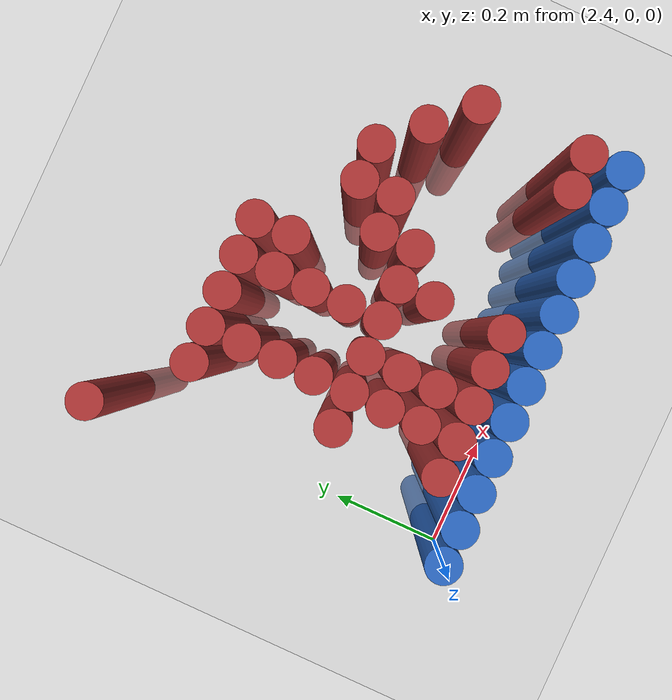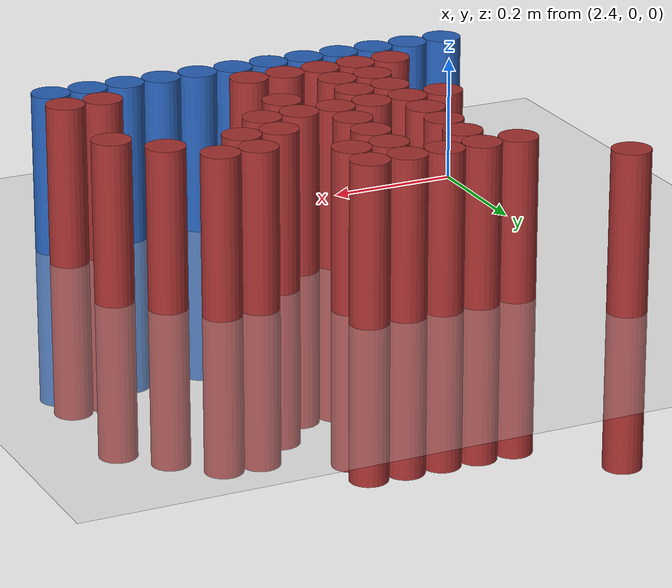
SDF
<sdf version="1.6">
 <world name="default">
  <model name="ground_plane">
   <static>1</static>
   <link name="link">
    <collision name="collision">
     <geometry><plane><normal>0 0 1</normal><size>100 100</size></plane></geometry>
     <surface><friction><ode><mu>100</mu><mu2>50</mu2></ode></friction></surface>
    </collision>
    <visual name="visual">
     <cast_shadows>0</cast_shadows>
     <geometry><plane><normal>0 0 1</normal><size>100 100</size></plane></geometry>
     <material>
      <script><uri>file://media/materials/scripts/gazebo.material</uri><name>Gazebo/Grey</name></script>
     </material>
    </visual>
   </link>
  </model>
  <model name="unit_cylinder_225">
   <static>1</static>
   <pose>2.430000 0.630000 0.000000 0.000000 0.000000 0.000000</pose>
   <link name="link">
    <inertial>
     <mass>1</mass>
     <inertia><ixx>0.145833</ixx><ixy>0</ixy><ixz>0</ixz><iyy>0.145833</iyy><iyz>0</iyz><izz>0.125</izz></inertia>
    </inertial>
    <collision name="collision">
     <geometry><cylinder><radius>0.030000</radius><length>0.5</length></cylinder></geometry>
    </collision>
    <visual name="visual">
     <geometry><cylinder><radius>0.030000</radius><length>0.5</length></cylinder></geometry>
     <material>
      <ambient>0.648000 0.192000 0.192000 1</ambient>
      <diffuse>0.648000 0.192000 0.192000 1</diffuse>
     </material>
     <material>
      <script><name>Gazebo/Grey</name><uri>file://media/materials/scripts/gazebo.material</uri></script>
     </material>
    </visual>
   </link>
  </model>
  <model name="unit_cylinder_230">
   <static>1</static>
   <pose>2.550000 0.510000 0.000000 0.000000 0.000000 0.000000</pose>
   <link name="link">
    <inertial>
     <mass>1</mass>
     <inertia><ixx>0.145833</ixx><ixy>0</ixy><ixz>0</ixz><iyy>0.145833</iyy><iyz>0</iyz><izz>0.125</izz></inertia>
    </inertial>
    <collision name="collision">
     <geometry><cylinder><radius>0.030000</radius><length>0.5</length></cylinder></geometry>
    </collision>
    <visual name="visual">
     <geometry><cylinder><radius>0.030000</radius><length>0.5</length></cylinder></geometry>
     <material>
      <ambient>0.648000 0.192000 0.192000 1</ambient>
      <diffuse>0.648000 0.192000 0.192000 1</diffuse>
     </material>
     <material>
      <script><name>Gazebo/Grey</name><uri>file://media/materials/scripts/gazebo.material</uri></script>
     </material>
    </visual>
   </link>
  </model>
  <model name="unit_cylinder_231">
   <static>1</static>
   <pose>2.610000 0.510000 0.000000 0.000000 0.000000 0.000000</pose>
   <link name="link">
    <inertial>
     <mass>1</mass>
     <inertia><ixx>0.145833</ixx><ixy>0</ixy><ixz>0</ixz><iyy>0.145833</iyy><iyz>0</iyz><izz>0.125</izz></inertia>
    </inertial>
    <collision name="collision">
     <geometry><cylinder><radius>0.030000</radius><length>0.5</length></cylinder></geometry>
    </collision>
    <visual name="visual">
     <geometry><cylinder><radius>0.030000</radius><length>0.5</length></cylinder></geometry>
     <material>
      <ambient>0.648000 0.192000 0.192000 1</ambient>
      <diffuse>0.648000 0.192000 0.192000 1</diffuse>
     </material>
     <material>
      <script><name>Gazebo/Grey</name><uri>file://media/materials/scripts/gazebo.material</uri></script>
     </material>
    </visual>
   </link>
  </model>
  <model name="unit_cylinder_232">
   <static>1</static>
   <pose>2.670000 0.510000 0.000000 0.000000 0.000000 0.000000</pose>
   <link name="link">
    <inertial>
     <mass>1</mass>
     <inertia><ixx>0.145833</ixx><ixy>0</ixy><ixz>0</ixz><iyy>0.145833</iyy><iyz>0</iyz><izz>0.125</izz></inertia>
    </inertial>
    <collision name="collision">
     <geometry><cylinder><radius>0.030000</radius><length>0.5</length></cylinder></geometry>
    </collision>
    <visual name="visual">
     <geometry><cylinder><radius>0.030000</radius><length>0.5</length></cylinder></geometry>
     <material>
      <ambient>0.648000 0.192000 0.192000 1</ambient>
      <diffuse>0.648000 0.192000 0.192000 1</diffuse>
     </material>
     <material>
      <script><name>Gazebo/Grey</name><uri>file://media/materials/scripts/gazebo.material</uri></script>
     </material>
    </visual>
   </link>
  </model>
  <model name="unit_cylinder_233">
   <static>1</static>
   <pose>2.730000 0.510000 0.000000 0.000000 0.000000 0.000000</pose>
   <link name="link">
    <inertial>
     <mass>1</mass>
     <inertia><ixx>0.145833</ixx><ixy>0</ixy><ixz>0</ixz><iyy>0.145833</iyy><iyz>0</iyz><izz>0.125</izz></inertia>
    </inertial>
    <collision name="collision">
     <geometry><cylinder><radius>0.030000</radius><length>0.5</length></cylinder></geometry>
    </collision>
    <visual name="visual">
     <geometry><cylinder><radius>0.030000</radius><length>0.5</length></cylinder></geometry>
     <material>
      <ambient>0.648000 0.192000 0.192000 1</ambient>
      <diffuse>0.648000 0.192000 0.192000 1</diffuse>
     </material>
     <material>
      <script><name>Gazebo/Grey</name><uri>file://media/materials/scripts/gazebo.material</uri></script>
     </material>
    </visual>
   </link>
  </model>
  <model name="unit_cylinder_234">
   <static>1</static>
   <pose>2.790000 0.510000 0.000000 0.000000 0.000000 0.000000</pose>
   <link name="link">
    <inertial>
     <mass>1</mass>
     <inertia><ixx>0.145833</ixx><ixy>0</ixy><ixz>0</ixz><iyy>0.145833</iyy><iyz>0</iyz><izz>0.125</izz></inertia>
    </inertial>
    <collision name="collision">
     <geometry><cylinder><radius>0.030000</radius><length>0.5</length></cylinder></geometry>
    </collision>
    <visual name="visual">
     <geometry><cylinder><radius>0.030000</radius><length>0.5</length></cylinder></geometry>
     <material>
      <ambient>0.648000 0.192000 0.192000 1</ambient>
      <diffuse>0.648000 0.192000 0.192000 1</diffuse>
     </material>
     <material>
      <script><name>Gazebo/Grey</name><uri>file://media/materials/scripts/gazebo.material</uri></script>
     </material>
    </visual>
   </link>
  </model>
  <model name="unit_cylinder_238">
   <static>1</static>
   <pose>2.610000 0.450000 0.000000 0.000000 0.000000 0.000000</pose>
   <link name="link">
    <inertial>
     <mass>1</mass>
     <inertia><ixx>0.145833</ixx><ixy>0</ixy><ixz>0</ixz><iyy>0.145833</iyy><iyz>0</iyz><izz>0.125</izz></inertia>
    </inertial>
    <collision name="collision">
     <geometry><cylinder><radius>0.030000</radius><length>0.5</length></cylinder></geometry>
    </collision>
    <visual name="visual">
     <geometry><cylinder><radius>0.030000</radius><length>0.5</length></cylinder></geometry>
     <material>
      <ambient>0.648000 0.192000 0.192000 1</ambient>
      <diffuse>0.648000 0.192000 0.192000 1</diffuse>
     </material>
     <material>
      <script><name>Gazebo/Grey</name><uri>file://media/materials/scripts/gazebo.material</uri></script>
     </material>
    </visual>
   </link>
  </model>
  <model name="unit_cylinder_239">
   <static>1</static>
   <pose>2.730000 0.450000 0.000000 0.000000 0.000000 0.000000</pose>
   <link name="link">
    <inertial>
     <mass>1</mass>
     <inertia><ixx>0.145833</ixx><ixy>0</ixy><ixz>0</ixz><iyy>0.145833</iyy><iyz>0</iyz><izz>0.125</izz></inertia>
    </inertial>
    <collision name="collision">
     <geometry><cylinder><radius>0.030000</radius><length>0.5</length></cylinder></geometry>
    </collision>
    <visual name="visual">
     <geometry><cylinder><radius>0.030000</radius><length>0.5</length></cylinder></geometry>
     <material>
      <ambient>0.648000 0.192000 0.192000 1</ambient>
      <diffuse>0.648000 0.192000 0.192000 1</diffuse>
     </material>
     <material>
      <script><name>Gazebo/Grey</name><uri>file://media/materials/scripts/gazebo.material</uri></script>
     </material>
    </visual>
   </link>
  </model>
  <model name="unit_cylinder_240">
   <static>1</static>
   <pose>2.790000 0.450000 0.000000 0.000000 0.000000 0.000000</pose>
   <link name="link">
    <inertial>
     <mass>1</mass>
     <inertia><ixx>0.145833</ixx><ixy>0</ixy><ixz>0</ixz><iyy>0.145833</iyy><iyz>0</iyz><izz>0.125</izz></inertia>
    </inertial>
    <collision name="collision">
     <geometry><cylinder><radius>0.030000</radius><length>0.5</length></cylinder></geometry>
    </collision>
    <visual name="visual">
     <geometry><cylinder><radius>0.030000</radius><length>0.5</length></cylinder></geometry>
     <material>
      <ambient>0.648000 0.192000 0.192000 1</ambient>
      <diffuse>0.648000 0.192000 0.192000 1</diffuse>
     </material>
     <material>
      <script><name>Gazebo/Grey</name><uri>file://media/materials/scripts/gazebo.material</uri></script>
     </material>
    </visual>
   </link>
  </model>
  <model name="unit_cylinder_247">
   <static>1</static>
   <pose>2.610000 0.390000 0.000000 0.000000 0.000000 0.000000</pose>
   <link name="link">
    <inertial>
     <mass>1</mass>
     <inertia><ixx>0.145833</ixx><ixy>0</ixy><ixz>0</ixz><iyy>0.145833</iyy><iyz>0</iyz><izz>0.125</izz></inertia>
    </inertial>
    <collision name="collision">
     <geometry><cylinder><radius>0.030000</radius><length>0.5</length></cylinder></geometry>
    </collision>
    <visual name="visual">
     <geometry><cylinder><radius>0.030000</radius><length>0.5</length></cylinder></geometry>
     <material>
      <ambient>0.648000 0.192000 0.192000 1</ambient>
      <diffuse>0.648000 0.192000 0.192000 1</diffuse>
     </material>
     <material>
      <script><name>Gazebo/Grey</name><uri>file://media/materials/scripts/gazebo.material</uri></script>
     </material>
    </visual>
   </link>
  </model>
  <model name="unit_cylinder_248">
   <static>1</static>
   <pose>2.730000 0.390000 0.000000 0.000000 0.000000 0.000000</pose>
   <link name="link">
    <inertial>
     <mass>1</mass>
     <inertia><ixx>0.145833</ixx><ixy>0</ixy><ixz>0</ixz><iyy>0.145833</iyy><iyz>0</iyz><izz>0.125</izz></inertia>
    </inertial>
    <collision name="collision">
     <geometry><cylinder><radius>0.030000</radius><length>0.5</length></cylinder></geometry>
    </collision>
    <visual name="visual">
     <geometry><cylinder><radius>0.030000</radius><length>0.5</length></cylinder></geometry>
     <material>
      <ambient>0.648000 0.192000 0.192000 1</ambient>
      <diffuse>0.648000 0.192000 0.192000 1</diffuse>
     </material>
     <material>
      <script><name>Gazebo/Grey</name><uri>file://media/materials/scripts/gazebo.material</uri></script>
     </material>
    </visual>
   </link>
  </model>
  <model name="unit_cylinder_249">
   <static>1</static>
   <pose>2.910000 0.390000 0.000000 0.000000 0.000000 0.000000</pose>
   <link name="link">
    <inertial>
     <mass>1</mass>
     <inertia><ixx>0.145833</ixx><ixy>0</ixy><ixz>0</ixz><iyy>0.145833</iyy><iyz>0</iyz><izz>0.125</izz></inertia>
    </inertial>
    <collision name="collision">
     <geometry><cylinder><radius>0.030000</radius><length>0.5</length></cylinder></geometry>
    </collision>
    <visual name="visual">
     <geometry><cylinder><radius>0.030000</radius><length>0.5</length></cylinder></geometry>
     <material>
      <ambient>0.648000 0.192000 0.192000 1</ambient>
      <diffuse>0.648000 0.192000 0.192000 1</diffuse>
     </material>
     <material>
      <script><name>Gazebo/Grey</name><uri>file://media/materials/scripts/gazebo.material</uri></script>
     </material>
    </visual>
   </link>
  </model>
  <model name="unit_cylinder_250">
   <static>1</static>
   <pose>2.970000 0.390000 0.000000 0.000000 0.000000 0.000000</pose>
   <link name="link">
    <inertial>
     <mass>1</mass>
     <inertia><ixx>0.145833</ixx><ixy>0</ixy><ixz>0</ixz><iyy>0.145833</iyy><iyz>0</iyz><izz>0.125</izz></inertia>
    </inertial>
    <collision name="collision">
     <geometry><cylinder><radius>0.030000</radius><length>0.5</length></cylinder></geometry>
    </collision>
    <visual name="visual">
     <geometry><cylinder><radius>0.030000</radius><length>0.5</length></cylinder></geometry>
     <material>
      <ambient>0.648000 0.192000 0.192000 1</ambient>
      <diffuse>0.648000 0.192000 0.192000 1</diffuse>
     </material>
     <material>
      <script><name>Gazebo/Grey</name><uri>file://media/materials/scripts/gazebo.material</uri></script>
     </material>
    </visual>
   </link>
  </model>
  <model name="unit_cylinder_256">
   <static>1</static>
   <pose>2.610000 0.330000 0.000000 0.000000 0.000000 0.000000</pose>
   <link name="link">
    <inertial>
     <mass>1</mass>
     <inertia><ixx>0.145833</ixx><ixy>0</ixy><ixz>0</ixz><iyy>0.145833</iyy><iyz>0</iyz><izz>0.125</izz></inertia>
    </inertial>
    <collision name="collision">
     <geometry><cylinder><radius>0.030000</radius><length>0.5</length></cylinder></geometry>
    </collision>
    <visual name="visual">
     <geometry><cylinder><radius>0.030000</radius><length>0.5</length></cylinder></geometry>
     <material>
      <ambient>0.648000 0.192000 0.192000 1</ambient>
      <diffuse>0.648000 0.192000 0.192000 1</diffuse>
     </material>
     <material>
      <script><name>Gazebo/Grey</name><uri>file://media/materials/scripts/gazebo.material</uri></script>
     </material>
    </visual>
   </link>
  </model>
  <model name="unit_cylinder_257">
   <static>1</static>
   <pose>2.730000 0.330000 0.000000 0.000000 0.000000 0.000000</pose>
   <link name="link">
    <inertial>
     <mass>1</mass>
     <inertia><ixx>0.145833</ixx><ixy>0</ixy><ixz>0</ixz><iyy>0.145833</iyy><iyz>0</iyz><izz>0.125</izz></inertia>
    </inertial>
    <collision name="collision">
     <geometry><cylinder><radius>0.030000</radius><length>0.5</length></cylinder></geometry>
    </collision>
    <visual name="visual">
     <geometry><cylinder><radius>0.030000</radius><length>0.5</length></cylinder></geometry>
     <material>
      <ambient>0.648000 0.192000 0.192000 1</ambient>
      <diffuse>0.648000 0.192000 0.192000 1</diffuse>
     </material>
     <material>
      <script><name>Gazebo/Grey</name><uri>file://media/materials/scripts/gazebo.material</uri></script>
     </material>
    </visual>
   </link>
  </model>
  <model name="unit_cylinder_258">
   <static>1</static>
   <pose>2.850000 0.330000 0.000000 0.000000 0.000000 0.000000</pose>
   <link name="link">
    <inertial>
     <mass>1</mass>
     <inertia><ixx>0.145833</ixx><ixy>0</ixy><ixz>0</ixz><iyy>0.145833</iyy><iyz>0</iyz><izz>0.125</izz></inertia>
    </inertial>
    <collision name="collision">
     <geometry><cylinder><radius>0.030000</radius><length>0.5</length></cylinder></geometry>
    </collision>
    <visual name="visual">
     <geometry><cylinder><radius>0.030000</radius><length>0.5</length></cylinder></geometry>
     <material>
      <ambient>0.648000 0.192000 0.192000 1</ambient>
      <diffuse>0.648000 0.192000 0.192000 1</diffuse>
     </material>
     <material>
      <script><name>Gazebo/Grey</name><uri>file://media/materials/scripts/gazebo.material</uri></script>
     </material>
    </visual>
   </link>
  </model>
  <model name="unit_cylinder_259">
   <static>1</static>
   <pose>2.910000 0.330000 0.000000 0.000000 0.000000 0.000000</pose>
   <link name="link">
    <inertial>
     <mass>1</mass>
     <inertia><ixx>0.145833</ixx><ixy>0</ixy><ixz>0</ixz><iyy>0.145833</iyy><iyz>0</iyz><izz>0.125</izz></inertia>
    </inertial>
    <collision name="collision">
     <geometry><cylinder><radius>0.030000</radius><length>0.5</length></cylinder></geometry>
    </collision>
    <visual name="visual">
     <geometry><cylinder><radius>0.030000</radius><length>0.5</length></cylinder></geometry>
     <material>
      <ambient>0.648000 0.192000 0.192000 1</ambient>
      <diffuse>0.648000 0.192000 0.192000 1</diffuse>
     </material>
     <material>
      <script><name>Gazebo/Grey</name><uri>file://media/materials/scripts/gazebo.material</uri></script>
     </material>
    </visual>
   </link>
  </model>
  <model name="unit_cylinder_260">
   <static>1</static>
   <pose>3.030000 0.330000 0.000000 0.000000 0.000000 0.000000</pose>
   <link name="link">
    <inertial>
     <mass>1</mass>
     <inertia><ixx>0.145833</ixx><ixy>0</ixy><ixz>0</ixz><iyy>0.145833</iyy><iyz>0</iyz><izz>0.125</izz></inertia>
    </inertial>
    <collision name="collision">
     <geometry><cylinder><radius>0.030000</radius><length>0.5</length></cylinder></geometry>
    </collision>
    <visual name="visual">
     <geometry><cylinder><radius>0.030000</radius><length>0.5</length></cylinder></geometry>
     <material>
      <ambient>0.648000 0.192000 0.192000 1</ambient>
      <diffuse>0.648000 0.192000 0.192000 1</diffuse>
     </material>
     <material>
      <script><name>Gazebo/Grey</name><uri>file://media/materials/scripts/gazebo.material</uri></script>
     </material>
    </visual>
   </link>
  </model>
  <model name="unit_cylinder_268">
   <static>1</static>
   <pose>2.550000 0.270000 0.000000 0.000000 0.000000 0.000000</pose>
   <link name="link">
    <inertial>
     <mass>1</mass>
     <inertia><ixx>0.145833</ixx><ixy>0</ixy><ixz>0</ixz><iyy>0.145833</iyy><iyz>0</iyz><izz>0.125</izz></inertia>
    </inertial>
    <collision name="collision">
     <geometry><cylinder><radius>0.030000</radius><length>0.5</length></cylinder></geometry>
    </collision>
    <visual name="visual">
     <geometry><cylinder><radius>0.030000</radius><length>0.5</length></cylinder></geometry>
     <material>
      <ambient>0.648000 0.192000 0.192000 1</ambient>
      <diffuse>0.648000 0.192000 0.192000 1</diffuse>
     </material>
     <material>
      <script><name>Gazebo/Grey</name><uri>file://media/materials/scripts/gazebo.material</uri></script>
     </material>
    </visual>
   </link>
  </model>
  <model name="unit_cylinder_269">
   <static>1</static>
   <pose>2.610000 0.270000 0.000000 0.000000 0.000000 0.000000</pose>
   <link name="link">
    <inertial>
     <mass>1</mass>
     <inertia><ixx>0.145833</ixx><ixy>0</ixy><ixz>0</ixz><iyy>0.145833</iyy><iyz>0</iyz><izz>0.125</izz></inertia>
    </inertial>
    <collision name="collision">
     <geometry><cylinder><radius>0.030000</radius><length>0.5</length></cylinder></geometry>
    </collision>
    <visual name="visual">
     <geometry><cylinder><radius>0.030000</radius><length>0.5</length></cylinder></geometry>
     <material>
      <ambient>0.648000 0.192000 0.192000 1</ambient>
      <diffuse>0.648000 0.192000 0.192000 1</diffuse>
     </material>
     <material>
      <script><name>Gazebo/Grey</name><uri>file://media/materials/scripts/gazebo.material</uri></script>
     </material>
    </visual>
   </link>
  </model>
  <model name="unit_cylinder_270">
   <static>1</static>
   <pose>2.670000 0.270000 0.000000 0.000000 0.000000 0.000000</pose>
   <link name="link">
    <inertial>
     <mass>1</mass>
     <inertia><ixx>0.145833</ixx><ixy>0</ixy><ixz>0</ixz><iyy>0.145833</iyy><iyz>0</iyz><izz>0.125</izz></inertia>
    </inertial>
    <collision name="collision">
     <geometry><cylinder><radius>0.030000</radius><length>0.5</length></cylinder></geometry>
    </collision>
    <visual name="visual">
     <geometry><cylinder><radius>0.030000</radius><length>0.5</length></cylinder></geometry>
     <material>
      <ambient>0.648000 0.192000 0.192000 1</ambient>
      <diffuse>0.648000 0.192000 0.192000 1</diffuse>
     </material>
     <material>
      <script><name>Gazebo/Grey</name><uri>file://media/materials/scripts/gazebo.material</uri></script>
     </material>
    </visual>
   </link>
  </model>
  <model name="unit_cylinder_271">
   <static>1</static>
   <pose>2.730000 0.270000 0.000000 0.000000 0.000000 0.000000</pose>
   <link name="link">
    <inertial>
     <mass>1</mass>
     <inertia><ixx>0.145833</ixx><ixy>0</ixy><ixz>0</ixz><iyy>0.145833</iyy><iyz>0</iyz><izz>0.125</izz></inertia>
    </inertial>
    <collision name="collision">
     <geometry><cylinder><radius>0.030000</radius><length>0.5</length></cylinder></geometry>
    </collision>
    <visual name="visual">
     <geometry><cylinder><radius>0.030000</radius><length>0.5</length></cylinder></geometry>
     <material>
      <ambient>0.648000 0.192000 0.192000 1</ambient>
      <diffuse>0.648000 0.192000 0.192000 1</diffuse>
     </material>
     <material>
      <script><name>Gazebo/Grey</name><uri>file://media/materials/scripts/gazebo.material</uri></script>
     </material>
    </visual>
   </link>
  </model>
  <model name="unit_cylinder_272">
   <static>1</static>
   <pose>2.790000 0.270000 0.000000 0.000000 0.000000 0.000000</pose>
   <link name="link">
    <inertial>
     <mass>1</mass>
     <inertia><ixx>0.145833</ixx><ixy>0</ixy><ixz>0</ixz><iyy>0.145833</iyy><iyz>0</iyz><izz>0.125</izz></inertia>
    </inertial>
    <collision name="collision">
     <geometry><cylinder><radius>0.030000</radius><length>0.5</length></cylinder></geometry>
    </collision>
    <visual name="visual">
     <geometry><cylinder><radius>0.030000</radius><length>0.5</length></cylinder></geometry>
     <material>
      <ambient>0.648000 0.192000 0.192000 1</ambient>
      <diffuse>0.648000 0.192000 0.192000 1</diffuse>
     </material>
     <material>
      <script><name>Gazebo/Grey</name><uri>file://media/materials/scripts/gazebo.material</uri></script>
     </material>
    </visual>
   </link>
  </model>
  <model name="unit_cylinder_273">
   <static>1</static>
   <pose>2.850000 0.270000 0.000000 0.000000 0.000000 0.000000</pose>
   <link name="link">
    <inertial>
     <mass>1</mass>
     <inertia><ixx>0.145833</ixx><ixy>0</ixy><ixz>0</ixz><iyy>0.145833</iyy><iyz>0</iyz><izz>0.125</izz></inertia>
    </inertial>
    <collision name="collision">
     <geometry><cylinder><radius>0.030000</radius><length>0.5</length></cylinder></geometry>
    </collision>
    <visual name="visual">
     <geometry><cylinder><radius>0.030000</radius><length>0.5</length></cylinder></geometry>
     <material>
      <ambient>0.648000 0.192000 0.192000 1</ambient>
      <diffuse>0.648000 0.192000 0.192000 1</diffuse>
     </material>
     <material>
      <script><name>Gazebo/Grey</name><uri>file://media/materials/scripts/gazebo.material</uri></script>
     </material>
    </visual>
   </link>
  </model>
  <model name="unit_cylinder_274">
   <static>1</static>
   <pose>3.090000 0.270000 0.000000 0.000000 0.000000 0.000000</pose>
   <link name="link">
    <inertial>
     <mass>1</mass>
     <inertia><ixx>0.145833</ixx><ixy>0</ixy><ixz>0</ixz><iyy>0.145833</iyy><iyz>0</iyz><izz>0.125</izz></inertia>
    </inertial>
    <collision name="collision">
     <geometry><cylinder><radius>0.030000</radius><length>0.5</length></cylinder></geometry>
    </collision>
    <visual name="visual">
     <geometry><cylinder><radius>0.030000</radius><length>0.5</length></cylinder></geometry>
     <material>
      <ambient>0.648000 0.192000 0.192000 1</ambient>
      <diffuse>0.648000 0.192000 0.192000 1</diffuse>
     </material>
     <material>
      <script><name>Gazebo/Grey</name><uri>file://media/materials/scripts/gazebo.material</uri></script>
     </material>
    </visual>
   </link>
  </model>
  <model name="unit_cylinder_279">
   <static>1</static>
   <pose>2.610000 0.210000 0.000000 0.000000 0.000000 0.000000</pose>
   <link name="link">
    <inertial>
     <mass>1</mass>
     <inertia><ixx>0.145833</ixx><ixy>0</ixy><ixz>0</ixz><iyy>0.145833</iyy><iyz>0</iyz><izz>0.125</izz></inertia>
    </inertial>
    <collision name="collision">
     <geometry><cylinder><radius>0.030000</radius><length>0.5</length></cylinder></geometry>
    </collision>
    <visual name="visual">
     <geometry><cylinder><radius>0.030000</radius><length>0.5</length></cylinder></geometry>
     <material>
      <ambient>0.648000 0.192000 0.192000 1</ambient>
      <diffuse>0.648000 0.192000 0.192000 1</diffuse>
     </material>
     <material>
      <script><name>Gazebo/Grey</name><uri>file://media/materials/scripts/gazebo.material</uri></script>
     </material>
    </visual>
   </link>
  </model>
  <model name="unit_cylinder_280">
   <static>1</static>
   <pose>2.670000 0.210000 0.000000 0.000000 0.000000 0.000000</pose>
   <link name="link">
    <inertial>
     <mass>1</mass>
     <inertia><ixx>0.145833</ixx><ixy>0</ixy><ixz>0</ixz><iyy>0.145833</iyy><iyz>0</iyz><izz>0.125</izz></inertia>
    </inertial>
    <collision name="collision">
     <geometry><cylinder><radius>0.030000</radius><length>0.5</length></cylinder></geometry>
    </collision>
    <visual name="visual">
     <geometry><cylinder><radius>0.030000</radius><length>0.5</length></cylinder></geometry>
     <material>
      <ambient>0.648000 0.192000 0.192000 1</ambient>
      <diffuse>0.648000 0.192000 0.192000 1</diffuse>
     </material>
     <material>
      <script><name>Gazebo/Grey</name><uri>file://media/materials/scripts/gazebo.material</uri></script>
     </material>
    </visual>
   </link>
  </model>
  <model name="unit_cylinder_281">
   <static>1</static>
   <pose>2.790000 0.210000 0.000000 0.000000 0.000000 0.000000</pose>
   <link name="link">
    <inertial>
     <mass>1</mass>
     <inertia><ixx>0.145833</ixx><ixy>0</ixy><ixz>0</ixz><iyy>0.145833</iyy><iyz>0</iyz><izz>0.125</izz></inertia>
    </inertial>
    <collision name="collision">
     <geometry><cylinder><radius>0.030000</radius><length>0.5</length></cylinder></geometry>
    </collision>
    <visual name="visual">
     <geometry><cylinder><radius>0.030000</radius><length>0.5</length></cylinder></geometry>
     <material>
      <ambient>0.648000 0.192000 0.192000 1</ambient>
      <diffuse>0.648000 0.192000 0.192000 1</diffuse>
     </material>
     <material>
      <script><name>Gazebo/Grey</name><uri>file://media/materials/scripts/gazebo.material</uri></script>
     </material>
    </visual>
   </link>
  </model>
  <model name="unit_cylinder_289">
   <static>1</static>
   <pose>2.610000 0.150000 0.000000 0.000000 0.000000 0.000000</pose>
   <link name="link">
    <inertial>
     <mass>1</mass>
     <inertia><ixx>0.145833</ixx><ixy>0</ixy><ixz>0</ixz><iyy>0.145833</iyy><iyz>0</iyz><izz>0.125</izz></inertia>
    </inertial>
    <collision name="collision">
     <geometry><cylinder><radius>0.030000</radius><length>0.5</length></cylinder></geometry>
    </collision>
    <visual name="visual">
     <geometry><cylinder><radius>0.030000</radius><length>0.5</length></cylinder></geometry>
     <material>
      <ambient>0.648000 0.192000 0.192000 1</ambient>
      <diffuse>0.648000 0.192000 0.192000 1</diffuse>
     </material>
     <material>
      <script><name>Gazebo/Grey</name><uri>file://media/materials/scripts/gazebo.material</uri></script>
     </material>
    </visual>
   </link>
  </model>
  <model name="unit_cylinder_290">
   <static>1</static>
   <pose>2.670000 0.150000 0.000000 0.000000 0.000000 0.000000</pose>
   <link name="link">
    <inertial>
     <mass>1</mass>
     <inertia><ixx>0.145833</ixx><ixy>0</ixy><ixz>0</ixz><iyy>0.145833</iyy><iyz>0</iyz><izz>0.125</izz></inertia>
    </inertial>
    <collision name="collision">
     <geometry><cylinder><radius>0.030000</radius><length>0.5</length></cylinder></geometry>
    </collision>
    <visual name="visual">
     <geometry><cylinder><radius>0.030000</radius><length>0.5</length></cylinder></geometry>
     <material>
      <ambient>0.648000 0.192000 0.192000 1</ambient>
      <diffuse>0.648000 0.192000 0.192000 1</diffuse>
     </material>
     <material>
      <script><name>Gazebo/Grey</name><uri>file://media/materials/scripts/gazebo.material</uri></script>
     </material>
    </visual>
   </link>
  </model>
  <model name="unit_cylinder_304">
   <static>1</static>
   <pose>2.550000 0.090000 0.000000 0.000000 0.000000 0.000000</pose>
   <link name="link">
    <inertial>
     <mass>1</mass>
     <inertia><ixx>0.145833</ixx><ixy>0</ixy><ixz>0</ixz><iyy>0.145833</iyy><iyz>0</iyz><izz>0.125</izz></inertia>
    </inertial>
    <collision name="collision">
     <geometry><cylinder><radius>0.030000</radius><length>0.5</length></cylinder></geometry>
    </collision>
    <visual name="visual">
     <geometry><cylinder><radius>0.030000</radius><length>0.5</length></cylinder></geometry>
     <material>
      <ambient>0.648000 0.192000 0.192000 1</ambient>
      <diffuse>0.648000 0.192000 0.192000 1</diffuse>
     </material>
     <material>
      <script><name>Gazebo/Grey</name><uri>file://media/materials/scripts/gazebo.material</uri></script>
     </material>
    </visual>
   </link>
  </model>
  <model name="unit_cylinder_305">
   <static>1</static>
   <pose>2.610000 0.090000 0.000000 0.000000 0.000000 0.000000</pose>
   <link name="link">
    <inertial>
     <mass>1</mass>
     <inertia><ixx>0.145833</ixx><ixy>0</ixy><ixz>0</ixz><iyy>0.145833</iyy><iyz>0</iyz><izz>0.125</izz></inertia>
    </inertial>
    <collision name="collision">
     <geometry><cylinder><radius>0.030000</radius><length>0.5</length></cylinder></geometry>
    </collision>
    <visual name="visual">
     <geometry><cylinder><radius>0.030000</radius><length>0.5</length></cylinder></geometry>
     <material>
      <ambient>0.648000 0.192000 0.192000 1</ambient>
      <diffuse>0.648000 0.192000 0.192000 1</diffuse>
     </material>
     <material>
      <script><name>Gazebo/Grey</name><uri>file://media/materials/scripts/gazebo.material</uri></script>
     </material>
    </visual>
   </link>
  </model>
  <model name="unit_cylinder_306">
   <static>1</static>
   <pose>2.670000 0.090000 0.000000 0.000000 0.000000 0.000000</pose>
   <link name="link">
    <inertial>
     <mass>1</mass>
     <inertia><ixx>0.145833</ixx><ixy>0</ixy><ixz>0</ixz><iyy>0.145833</iyy><iyz>0</iyz><izz>0.125</izz></inertia>
    </inertial>
    <collision name="collision">
     <geometry><cylinder><radius>0.030000</radius><length>0.5</length></cylinder></geometry>
    </collision>
    <visual name="visual">
     <geometry><cylinder><radius>0.030000</radius><length>0.5</length></cylinder></geometry>
     <material>
      <ambient>0.648000 0.192000 0.192000 1</ambient>
      <diffuse>0.648000 0.192000 0.192000 1</diffuse>
     </material>
     <material>
      <script><name>Gazebo/Grey</name><uri>file://media/materials/scripts/gazebo.material</uri></script>
     </material>
    </visual>
   </link>
  </model>
  <model name="unit_cylinder_307">
   <static>1</static>
   <pose>2.730000 0.090000 0.000000 0.000000 0.000000 0.000000</pose>
   <link name="link">
    <inertial>
     <mass>1</mass>
     <inertia><ixx>0.145833</ixx><ixy>0</ixy><ixz>0</ixz><iyy>0.145833</iyy><iyz>0</iyz><izz>0.125</izz></inertia>
    </inertial>
    <collision name="collision">
     <geometry><cylinder><radius>0.030000</radius><length>0.5</length></cylinder></geometry>
    </collision>
    <visual name="visual">
     <geometry><cylinder><radius>0.030000</radius><length>0.5</length></cylinder></geometry>
     <material>
      <ambient>0.648000 0.192000 0.192000 1</ambient>
      <diffuse>0.648000 0.192000 0.192000 1</diffuse>
     </material>
     <material>
      <script><name>Gazebo/Grey</name><uri>file://media/materials/scripts/gazebo.material</uri></script>
     </material>
    </visual>
   </link>
  </model>
  <model name="unit_cylinder_308">
   <static>1</static>
   <pose>2.790000 0.090000 0.000000 0.000000 0.000000 0.000000</pose>
   <link name="link">
    <inertial>
     <mass>1</mass>
     <inertia><ixx>0.145833</ixx><ixy>0</ixy><ixz>0</ixz><iyy>0.145833</iyy><iyz>0</iyz><izz>0.125</izz></inertia>
    </inertial>
    <collision name="collision">
     <geometry><cylinder><radius>0.030000</radius><length>0.5</length></cylinder></geometry>
    </collision>
    <visual name="visual">
     <geometry><cylinder><radius>0.030000</radius><length>0.5</length></cylinder></geometry>
     <material>
      <ambient>0.648000 0.192000 0.192000 1</ambient>
      <diffuse>0.648000 0.192000 0.192000 1</diffuse>
     </material>
     <material>
      <script><name>Gazebo/Grey</name><uri>file://media/materials/scripts/gazebo.material</uri></script>
     </material>
    </visual>
   </link>
  </model>
  <model name="unit_cylinder_309">
   <static>1</static>
   <pose>3.030000 0.090000 0.000000 0.000000 0.000000 0.000000</pose>
   <link name="link">
    <inertial>
     <mass>1</mass>
     <inertia><ixx>0.145833</ixx><ixy>0</ixy><ixz>0</ixz><iyy>0.145833</iyy><iyz>0</iyz><izz>0.125</izz></inertia>
    </inertial>
    <collision name="collision">
     <geometry><cylinder><radius>0.030000</radius><length>0.5</length></cylinder></geometry>
    </collision>
    <visual name="visual">
     <geometry><cylinder><radius>0.030000</radius><length>0.5</length></cylinder></geometry>
     <material>
      <ambient>0.648000 0.192000 0.192000 1</ambient>
      <diffuse>0.648000 0.192000 0.192000 1</diffuse>
     </material>
     <material>
      <script><name>Gazebo/Grey</name><uri>file://media/materials/scripts/gazebo.material</uri></script>
     </material>
    </visual>
   </link>
  </model>
  <model name="unit_cylinder_310">
   <static>1</static>
   <pose>3.090000 0.090000 0.000000 0.000000 0.000000 0.000000</pose>
   <link name="link">
    <inertial>
     <mass>1</mass>
     <inertia><ixx>0.145833</ixx><ixy>0</ixy><ixz>0</ixz><iyy>0.145833</iyy><iyz>0</iyz><izz>0.125</izz></inertia>
    </inertial>
    <collision name="collision">
     <geometry><cylinder><radius>0.030000</radius><length>0.5</length></cylinder></geometry>
    </collision>
    <visual name="visual">
     <geometry><cylinder><radius>0.030000</radius><length>0.5</length></cylinder></geometry>
     <material>
      <ambient>0.648000 0.192000 0.192000 1</ambient>
      <diffuse>0.648000 0.192000 0.192000 1</diffuse>
     </material>
     <material>
      <script><name>Gazebo/Grey</name><uri>file://media/materials/scripts/gazebo.material</uri></script>
     </material>
    </visual>
   </link>
  </model>
  <model name="unit_cylinder_321">
   <static>1</static>
   <pose>2.430000 0.030000 0.000000 0.000000 0.000000 0.000000</pose>
   <link name="link">
    <inertial>
     <mass>1</mass>
     <inertia><ixx>0.145833</ixx><ixy>0</ixy><ixz>0</ixz><iyy>0.145833</iyy><iyz>0</iyz><izz>0.125</izz></inertia>
    </inertial>
    <collision name="collision">
     <geometry><cylinder><radius>0.030000</radius><length>0.5</length></cylinder></geometry>
    </collision>
    <visual name="visual">
     <geometry><cylinder><radius>0.030000</radius><length>0.5</length></cylinder></geometry>
     <material>
      <ambient>0.152000 0.379000 0.720000 1</ambient>
      <diffuse>0.152000 0.379000 0.720000 1</diffuse>
     </material>
     <material>
      <script><name>Gazebo/Grey</name><uri>file://media/materials/scripts/gazebo.material</uri></script>
     </material>
    </visual>
   </link>
  </model>
  <model name="unit_cylinder_322">
   <static>1</static>
   <pose>2.490000 0.030000 0.000000 0.000000 0.000000 0.000000</pose>
   <link name="link">
    <inertial>
     <mass>1</mass>
     <inertia><ixx>0.145833</ixx><ixy>0</ixy><ixz>0</ixz><iyy>0.145833</iyy><iyz>0</iyz><izz>0.125</izz></inertia>
    </inertial>
    <collision name="collision">
     <geometry><cylinder><radius>0.030000</radius><length>0.5</length></cylinder></geometry>
    </collision>
    <visual name="visual">
     <geometry><cylinder><radius>0.030000</radius><length>0.5</length></cylinder></geometry>
     <material>
      <ambient>0.152000 0.379000 0.720000 1</ambient>
      <diffuse>0.152000 0.379000 0.720000 1</diffuse>
     </material>
     <material>
      <script><name>Gazebo/Grey</name><uri>file://media/materials/scripts/gazebo.material</uri></script>
     </material>
    </visual>
   </link>
  </model>
  <model name="unit_cylinder_323">
   <static>1</static>
   <pose>2.550000 0.030000 0.000000 0.000000 0.000000 0.000000</pose>
   <link name="link">
    <inertial>
     <mass>1</mass>
     <inertia><ixx>0.145833</ixx><ixy>0</ixy><ixz>0</ixz><iyy>0.145833</iyy><iyz>0</iyz><izz>0.125</izz></inertia>
    </inertial>
    <collision name="collision">
     <geometry><cylinder><radius>0.030000</radius><length>0.5</length></cylinder></geometry>
    </collision>
    <visual name="visual">
     <geometry><cylinder><radius>0.030000</radius><length>0.5</length></cylinder></geometry>
     <material>
      <ambient>0.152000 0.379000 0.720000 1</ambient>
      <diffuse>0.152000 0.379000 0.720000 1</diffuse>
     </material>
     <material>
      <script><name>Gazebo/Grey</name><uri>file://media/materials/scripts/gazebo.material</uri></script>
     </material>
    </visual>
   </link>
  </model>
  <model name="unit_cylinder_324">
   <static>1</static>
   <pose>2.610000 0.030000 0.000000 0.000000 0.000000 0.000000</pose>
   <link name="link">
    <inertial>
     <mass>1</mass>
     <inertia><ixx>0.145833</ixx><ixy>0</ixy><ixz>0</ixz><iyy>0.145833</iyy><iyz>0</iyz><izz>0.125</izz></inertia>
    </inertial>
    <collision name="collision">
     <geometry><cylinder><radius>0.030000</radius><length>0.5</length></cylinder></geometry>
    </collision>
    <visual name="visual">
     <geometry><cylinder><radius>0.030000</radius><length>0.5</length></cylinder></geometry>
     <material>
      <ambient>0.152000 0.379000 0.720000 1</ambient>
      <diffuse>0.152000 0.379000 0.720000 1</diffuse>
     </material>
     <material>
      <script><name>Gazebo/Grey</name><uri>file://media/materials/scripts/gazebo.material</uri></script>
     </material>
    </visual>
   </link>
  </model>
  <model name="unit_cylinder_325">
   <static>1</static>
   <pose>2.670000 0.030000 0.000000 0.000000 0.000000 0.000000</pose>
   <link name="link">
    <inertial>
     <mass>1</mass>
     <inertia><ixx>0.145833</ixx><ixy>0</ixy><ixz>0</ixz><iyy>0.145833</iyy><iyz>0</iyz><izz>0.125</izz></inertia>
    </inertial>
    <collision name="collision">
     <geometry><cylinder><radius>0.030000</radius><length>0.5</length></cylinder></geometry>
    </collision>
    <visual name="visual">
     <geometry><cylinder><radius>0.030000</radius><length>0.5</length></cylinder></geometry>
     <material>
      <ambient>0.152000 0.379000 0.720000 1</ambient>
      <diffuse>0.152000 0.379000 0.720000 1</diffuse>
     </material>
     <material>
      <script><name>Gazebo/Grey</name><uri>file://media/materials/scripts/gazebo.material</uri></script>
     </material>
    </visual>
   </link>
  </model>
  <model name="unit_cylinder_326">
   <static>1</static>
   <pose>2.730000 0.030000 0.000000 0.000000 0.000000 0.000000</pose>
   <link name="link">
    <inertial>
     <mass>1</mass>
     <inertia><ixx>0.145833</ixx><ixy>0</ixy><ixz>0</ixz><iyy>0.145833</iyy><iyz>0</iyz><izz>0.125</izz></inertia>
    </inertial>
    <collision name="collision">
     <geometry><cylinder><radius>0.030000</radius><length>0.5</length></cylinder></geometry>
    </collision>
    <visual name="visual">
     <geometry><cylinder><radius>0.030000</radius><length>0.5</length></cylinder></geometry>
     <material>
      <ambient>0.152000 0.379000 0.720000 1</ambient>
      <diffuse>0.152000 0.379000 0.720000 1</diffuse>
     </material>
     <material>
      <script><name>Gazebo/Grey</name><uri>file://media/materials/scripts/gazebo.material</uri></script>
     </material>
    </visual>
   </link>
  </model>
  <model name="unit_cylinder_327">
   <static>1</static>
   <pose>2.790000 0.030000 0.000000 0.000000 0.000000 0.000000</pose>
   <link name="link">
    <inertial>
     <mass>1</mass>
     <inertia><ixx>0.145833</ixx><ixy>0</ixy><ixz>0</ixz><iyy>0.145833</iyy><iyz>0</iyz><izz>0.125</izz></inertia>
    </inertial>
    <collision name="collision">
     <geometry><cylinder><radius>0.030000</radius><length>0.5</length></cylinder></geometry>
    </collision>
    <visual name="visual">
     <geometry><cylinder><radius>0.030000</radius><length>0.5</length></cylinder></geometry>
     <material>
      <ambient>0.152000 0.379000 0.720000 1</ambient>
      <diffuse>0.152000 0.379000 0.720000 1</diffuse>
     </material>
     <material>
      <script><name>Gazebo/Grey</name><uri>file://media/materials/scripts/gazebo.material</uri></script>
     </material>
    </visual>
   </link>
  </model>
  <model name="unit_cylinder_328">
   <static>1</static>
   <pose>2.850000 0.030000 0.000000 0.000000 0.000000 0.000000</pose>
   <link name="link">
    <inertial>
     <mass>1</mass>
     <inertia><ixx>0.145833</ixx><ixy>0</ixy><ixz>0</ixz><iyy>0.145833</iyy><iyz>0</iyz><izz>0.125</izz></inertia>
    </inertial>
    <collision name="collision">
     <geometry><cylinder><radius>0.030000</radius><length>0.5</length></cylinder></geometry>
    </collision>
    <visual name="visual">
     <geometry><cylinder><radius>0.030000</radius><length>0.5</length></cylinder></geometry>
     <material>
      <ambient>0.152000 0.379000 0.720000 1</ambient>
      <diffuse>0.152000 0.379000 0.720000 1</diffuse>
     </material>
     <material>
      <script><name>Gazebo/Grey</name><uri>file://media/materials/scripts/gazebo.material</uri></script>
     </material>
    </visual>
   </link>
  </model>
  <model name="unit_cylinder_329">
   <static>1</static>
   <pose>2.910000 0.030000 0.000000 0.000000 0.000000 0.000000</pose>
   <link name="link">
    <inertial>
     <mass>1</mass>
     <inertia><ixx>0.145833</ixx><ixy>0</ixy><ixz>0</ixz><iyy>0.145833</iyy><iyz>0</iyz><izz>0.125</izz></inertia>
    </inertial>
    <collision name="collision">
     <geometry><cylinder><radius>0.030000</radius><length>0.5</length></cylinder></geometry>
    </collision>
    <visual name="visual">
     <geometry><cylinder><radius>0.030000</radius><length>0.5</length></cylinder></geometry>
     <material>
      <ambient>0.152000 0.379000 0.720000 1</ambient>
      <diffuse>0.152000 0.379000 0.720000 1</diffuse>
     </material>
     <material>
      <script><name>Gazebo/Grey</name><uri>file://media/materials/scripts/gazebo.material</uri></script>
     </material>
    </visual>
   </link>
  </model>
  <model name="unit_cylinder_330">
   <static>1</static>
   <pose>2.970000 0.030000 0.000000 0.000000 0.000000 0.000000</pose>
   <link name="link">
    <inertial>
     <mass>1</mass>
     <inertia><ixx>0.145833</ixx><ixy>0</ixy><ixz>0</ixz><iyy>0.145833</iyy><iyz>0</iyz><izz>0.125</izz></inertia>
    </inertial>
    <collision name="collision">
     <geometry><cylinder><radius>0.030000</radius><length>0.5</length></cylinder></geometry>
    </collision>
    <visual name="visual">
     <geometry><cylinder><radius>0.030000</radius><length>0.5</length></cylinder></geometry>
     <material>
      <ambient>0.152000 0.379000 0.720000 1</ambient>
      <diffuse>0.152000 0.379000 0.720000 1</diffuse>
     </material>
     <material>
      <script><name>Gazebo/Grey</name><uri>file://media/materials/scripts/gazebo.material</uri></script>
     </material>
    </visual>
   </link>
  </model>
  <model name="unit_cylinder_331">
   <static>1</static>
   <pose>3.030000 0.030000 0.000000 0.000000 0.000000 0.000000</pose>
   <link name="link">
    <inertial>
     <mass>1</mass>
     <inertia><ixx>0.145833</ixx><ixy>0</ixy><ixz>0</ixz><iyy>0.145833</iyy><iyz>0</iyz><izz>0.125</izz></inertia>
    </inertial>
    <collision name="collision">
     <geometry><cylinder><radius>0.030000</radius><length>0.5</length></cylinder></geometry>
    </collision>
    <visual name="visual">
     <geometry><cylinder><radius>0.030000</radius><length>0.5</length></cylinder></geometry>
     <material>
      <ambient>0.152000 0.379000 0.720000 1</ambient>
      <diffuse>0.152000 0.379000 0.720000 1</diffuse>
     </material>
     <material>
      <script><name>Gazebo/Grey</name><uri>file://media/materials/scripts/gazebo.material</uri></script>
     </material>
    </visual>
   </link>
  </model>
  <model name="unit_cylinder_332">
   <static>1</static>
   <pose>3.090000 0.030000 0.000000 0.000000 0.000000 0.000000</pose>
   <link name="link">
    <inertial>
     <mass>1</mass>
     <inertia><ixx>0.145833</ixx><ixy>0</ixy><ixz>0</ixz><iyy>0.145833</iyy><iyz>0</iyz><izz>0.125</izz></inertia>
    </inertial>
    <collision name="collision">
     <geometry><cylinder><radius>0.030000</radius><length>0.5</length></cylinder></geometry>
    </collision>
    <visual name="visual">
     <geometry><cylinder><radius>0.030000</radius><length>0.5</length></cylinder></geometry>
     <material>
      <ambient>0.152000 0.379000 0.720000 1</ambient>
      <diffuse>0.152000 0.379000 0.720000 1</diffuse>
     </material>
     <material>
      <script><name>Gazebo/Grey</name><uri>file://media/materials/scripts/gazebo.material</uri></script>
     </material>
    </visual>
   </link>
  </model>
 </world>
</sdf>
